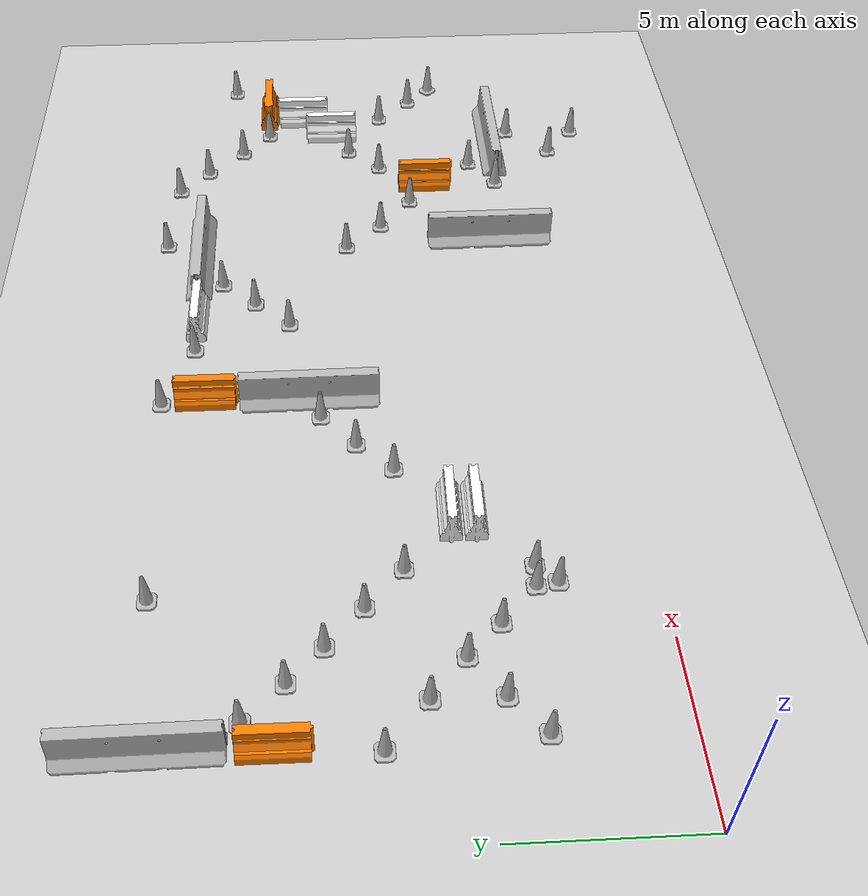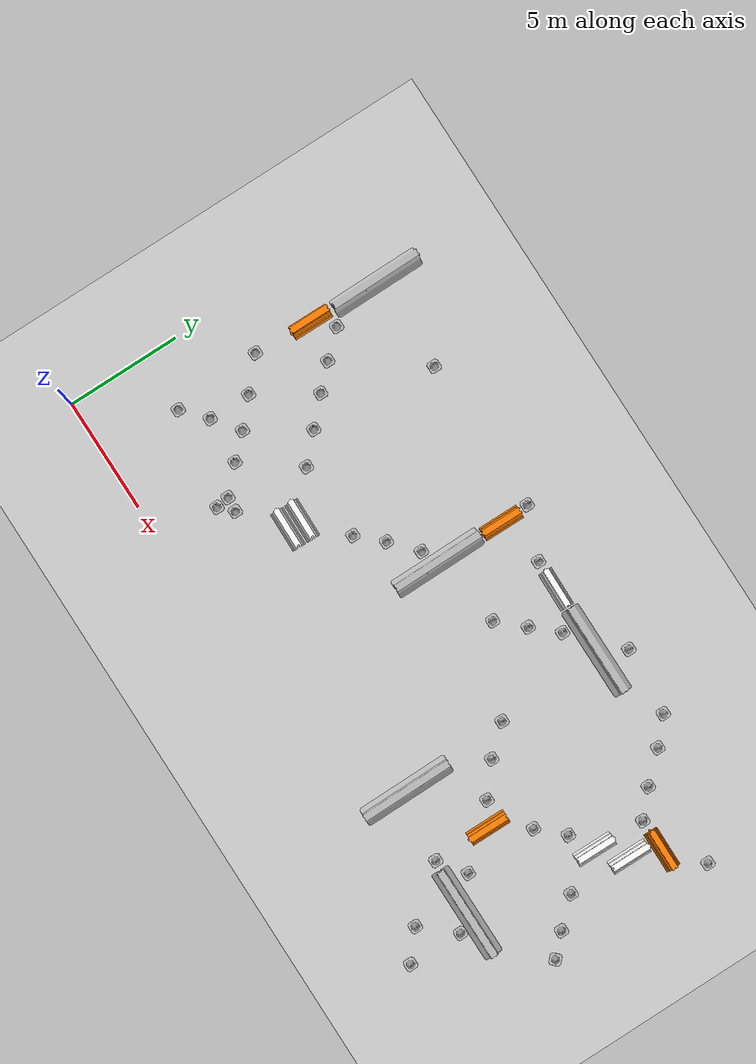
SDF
<sdf version="1.6">
 <world name="default">
  <model name="ground_plane">
   <static>1</static>
   <link name="link">
    <collision name="collision">
     <geometry><plane><normal>0 0 1</normal><size>100 100</size></plane></geometry>
     <surface>
      <contact><collide_bitmask>65535</collide_bitmask></contact>
      <friction><ode><mu>100</mu><mu2>50</mu2></ode></friction>
     </surface>
    </collision>
    <visual name="visual">
     <cast_shadows>0</cast_shadows>
     <geometry><plane><normal>0 0 1</normal><size>100 100</size></plane></geometry>
     <material>
      <script><uri>file://media/materials/scripts/gazebo.material</uri><name>Gazebo/Grey</name></script>
     </material>
    </visual>
   </link>
  </model>
  <model name="30x30env"><static>1</static><pose>32.1206 3.39752 0 0 -0 0</pose></model>
  <model name="Construction Cone_0_clone_0_clone_clone_clone_clone_clone_3_clone_0_clone_clone">
   <static>1</static>
   <link name="link">
    <collision name="collision">
     <geometry>
      <mesh><scale>10 10 10</scale><uri>model://construction_cone/meshes/construction_cone.dae</uri></mesh>
     </geometry>
    </collision>
    <visual name="visual">
     <geometry>
      <mesh><scale>10 10 10</scale><uri>model://construction_cone/meshes/construction_cone.dae</uri></mesh>
     </geometry>
    </visual>
    <inertial>
     <inertia><ixx>1</ixx><ixy>0</ixy><ixz>0</ixz><iyy>1</iyy><iyz>0</iyz><izz>1</izz></inertia>
     <mass>1</mass>
    </inertial>
   </link>
   <pose>20.6118 13.6161 -0 0 -0 0</pose>
  </model>
  <model name="Construction Cone_0_clone_0_clone_clone_clone_clone_clone_3_clone_0_clone_clone_0">
   <static>1</static>
   <link name="link">
    <collision name="collision">
     <geometry>
      <mesh><scale>10 10 10</scale><uri>model://construction_cone/meshes/construction_cone.dae</uri></mesh>
     </geometry>
    </collision>
    <visual name="visual">
     <geometry>
      <mesh><scale>10 10 10</scale><uri>model://construction_cone/meshes/construction_cone.dae</uri></mesh>
     </geometry>
    </visual>
    <inertial>
     <inertia><ixx>1</ixx><ixy>0</ixy><ixz>0</ixz><iyy>1</iyy><iyz>0</iyz><izz>1</izz></inertia>
     <mass>1</mass>
    </inertial>
   </link>
   <pose>23.5533 13.3733 -0 0 -0 0</pose>
  </model>
  <model name="Construction Cone_0_clone_0_clone_clone_clone_clone_clone_3_clone_0_clone_clone_1">
   <static>1</static>
   <link name="link">
    <collision name="collision">
     <geometry>
      <mesh><scale>10 10 10</scale><uri>model://construction_cone/meshes/construction_cone.dae</uri></mesh>
     </geometry>
    </collision>
    <visual name="visual">
     <geometry>
      <mesh><scale>10 10 10</scale><uri>model://construction_cone/meshes/construction_cone.dae</uri></mesh>
     </geometry>
    </visual>
    <inertial>
     <inertia><ixx>1</ixx><ixy>0</ixy><ixz>0</ixz><iyy>1</iyy><iyz>0</iyz><izz>1</izz></inertia>
     <mass>1</mass>
    </inertial>
   </link>
   <pose>24.5911 12.4307 -3e-06 -3e-06 -1e-06 -0</pose>
  </model>
  <model name="Construction Cone_0_clone_0_clone_clone_clone_clone_clone_3_clone_0_clone_clone_2">
   <static>1</static>
   <link name="link">
    <collision name="collision">
     <geometry>
      <mesh><scale>10 10 10</scale><uri>model://construction_cone/meshes/construction_cone.dae</uri></mesh>
     </geometry>
    </collision>
    <visual name="visual">
     <geometry>
      <mesh><scale>10 10 10</scale><uri>model://construction_cone/meshes/construction_cone.dae</uri></mesh>
     </geometry>
    </visual>
    <inertial>
     <inertia><ixx>1</ixx><ixy>0</ixy><ixz>0</ixz><iyy>1</iyy><iyz>0</iyz><izz>1</izz></inertia>
     <mass>1</mass>
    </inertial>
   </link>
   <pose>25.6981 11.2556 -3e-06 -3e-06 -1e-06 -0</pose>
  </model>
  <model name="drc_practice_organge_jersey_barrier_clone_clone_clone_0_clone">
   <static>1</static>
   <link name="link">
    <visual name="visual">
     <geometry>
      <mesh><uri>model://drc_practice_orange_jersey_barrier/meshes/jersey_barrier.dae</uri></mesh>
     </geometry>
    </visual>
    <collision name="collision">
     <geometry>
      <mesh><uri>model://drc_practice_orange_jersey_barrier/meshes/jersey_barrier.dae</uri></mesh>
     </geometry>
    </collision>
   </link>
   <pose>28.1226 10.3364 0 0 0 -1.57472</pose>
  </model>
  <model name="Construction Cone_0_clone_0_clone_clone_clone_clone_clone_3_clone_0_clone_clone_2_clone">
   <static>1</static>
   <link name="link">
    <collision name="collision">
     <geometry>
      <mesh><scale>10 10 10</scale><uri>model://construction_cone/meshes/construction_cone.dae</uri></mesh>
     </geometry>
    </collision>
    <visual name="visual">
     <geometry>
      <mesh><scale>10 10 10</scale><uri>model://construction_cone/meshes/construction_cone.dae</uri></mesh>
     </geometry>
    </visual>
    <inertial>
     <inertia><ixx>1</ixx><ixy>0</ixy><ixz>0</ixz><iyy>1</iyy><iyz>0</iyz><izz>1</izz></inertia>
     <mass>1</mass>
    </inertial>
   </link>
   <pose>26.7361 10.3238 -0 0 -0 0</pose>
  </model>
  <model name="Construction Cone_0_clone_0_clone_clone_clone_clone_clone_3_clone_0_clone_clone_2_clone_clone">
   <static>1</static>
   <link name="link">
    <collision name="collision">
     <geometry>
      <mesh><scale>10 10 10</scale><uri>model://construction_cone/meshes/construction_cone.dae</uri></mesh>
     </geometry>
    </collision>
    <visual name="visual">
     <geometry>
      <mesh><scale>10 10 10</scale><uri>model://construction_cone/meshes/construction_cone.dae</uri></mesh>
     </geometry>
    </visual>
    <inertial>
     <inertia><ixx>1</ixx><ixy>0</ixy><ixz>0</ixz><iyy>1</iyy><iyz>0</iyz><izz>1</izz></inertia>
     <mass>1</mass>
    </inertial>
   </link>
   <pose>29.595 11.6065 -0 0 -0 0.005179</pose>
  </model>
  <model name="drc_practice_white_jersey_barrier_clone_clone_clone_0_clone_0_clone_clone_0">
   <static>1</static>
   <link name="link">
    <visual name="visual">
     <geometry>
      <mesh><uri>model://drc_practice_white_jersey_barrier/meshes/jersey_barrier.dae</uri></mesh>
     </geometry>
    </visual>
    <collision name="collision">
     <geometry>
      <mesh><uri>model://drc_practice_white_jersey_barrier/meshes/jersey_barrier.dae</uri></mesh>
     </geometry>
    </collision>
   </link>
   <pose>27.6413 9.06502 0 0 -0 3.13979</pose>
  </model>
  <model name="drc_practice_white_jersey_barrier_clone_clone_clone_0_clone_0_clone_clone_1">
   <static>1</static>
   <link name="link">
    <visual name="visual">
     <geometry>
      <mesh><uri>model://drc_practice_white_jersey_barrier/meshes/jersey_barrier.dae</uri></mesh>
     </geometry>
    </visual>
    <collision name="collision">
     <geometry>
      <mesh><uri>model://drc_practice_white_jersey_barrier/meshes/jersey_barrier.dae</uri></mesh>
     </geometry>
    </collision>
   </link>
   <pose>26.6383 8.05655 0 0 -0 3.13979</pose>
  </model>
  <model name="Construction Cone_0_clone_0_clone_clone_clone_clone_clone_3_clone_0_clone_clone_2_clone_clone_0">
   <static>1</static>
   <link name="link">
    <collision name="collision">
     <geometry>
      <mesh><scale>10 10 10</scale><uri>model://construction_cone/meshes/construction_cone.dae</uri></mesh>
     </geometry>
    </collision>
    <visual name="visual">
     <geometry>
      <mesh><scale>10 10 10</scale><uri>model://construction_cone/meshes/construction_cone.dae</uri></mesh>
     </geometry>
    </visual>
    <inertial>
     <inertia><ixx>1</ixx><ixy>0</ixy><ixz>0</ixz><iyy>1</iyy><iyz>0</iyz><izz>1</izz></inertia>
     <mass>1</mass>
    </inertial>
   </link>
   <pose>25.5939 7.47742 -0 0 -0 0</pose>
  </model>
  <model name="Construction Cone_0_clone_0_clone_clone_clone_clone_clone_3_clone_0_clone_clone_2_clone_clone_1">
   <static>1</static>
   <link name="link">
    <collision name="collision">
     <geometry>
      <mesh><scale>10 10 10</scale><uri>model://construction_cone/meshes/construction_cone.dae</uri></mesh>
     </geometry>
    </collision>
    <visual name="visual">
     <geometry>
      <mesh><scale>10 10 10</scale><uri>model://construction_cone/meshes/construction_cone.dae</uri></mesh>
     </geometry>
    </visual>
    <inertial>
     <inertia><ixx>1</ixx><ixy>0</ixy><ixz>0</ixz><iyy>1</iyy><iyz>0</iyz><izz>1</izz></inertia>
     <mass>1</mass>
    </inertial>
   </link>
   <pose>27.6304 6.28997 0 -0 -0 -0</pose>
  </model>
  <model name="Construction Cone_0_clone_0_clone_clone_clone_clone_clone_3_clone_0_clone_clone_2_clone_clone_2">
   <static>1</static>
   <link name="link">
    <collision name="collision">
     <geometry>
      <mesh><scale>10 10 10</scale><uri>model://construction_cone/meshes/construction_cone.dae</uri></mesh>
     </geometry>
    </collision>
    <visual name="visual">
     <geometry>
      <mesh><scale>10 10 10</scale><uri>model://construction_cone/meshes/construction_cone.dae</uri></mesh>
     </geometry>
    </visual>
    <inertial>
     <inertia><ixx>1</ixx><ixy>0</ixy><ixz>0</ixz><iyy>1</iyy><iyz>0</iyz><izz>1</izz></inertia>
     <mass>1</mass>
    </inertial>
   </link>
   <pose>28.6791 5.15536 0 -0 -0 -0</pose>
  </model>
  <model name="Construction Cone_0_clone_0_clone_clone_clone_clone_clone_3_clone_0_clone_clone_2_clone_clone_3">
   <static>1</static>
   <link name="link">
    <collision name="collision">
     <geometry>
      <mesh><scale>10 10 10</scale><uri>model://construction_cone/meshes/construction_cone.dae</uri></mesh>
     </geometry>
    </collision>
    <visual name="visual">
     <geometry>
      <mesh><scale>10 10 10</scale><uri>model://construction_cone/meshes/construction_cone.dae</uri></mesh>
     </geometry>
    </visual>
    <inertial>
     <inertia><ixx>1</ixx><ixy>0</ixy><ixz>0</ixz><iyy>1</iyy><iyz>0</iyz><izz>1</izz></inertia>
     <mass>1</mass>
    </inertial>
   </link>
   <pose>29.5176 4.3266 -0 0 0 -0.794598</pose>
  </model>
  <model name="jersey_barrier_clone_clone_clone_0_clone_clone_clone_clone_clone_clone_clone">
   <static>1</static>
   <link name="link">
    <visual name="visual">
     <geometry><mesh><uri>model://jersey_barrier/meshes/jersey_barrier.dae</uri></mesh></geometry>
    </visual>
    <collision name="upright">
     <pose>0 0 0.5715 0 -0 0</pose>
     <geometry><box><size>4.06542 0.3063 1.143</size></box></geometry>
    </collision>
    <collision name="base">
     <pose>0 0 0.032258 0 -0 0</pose>
     <geometry><box><size>4.06542 0.8107 0.064516</size></box></geometry>
    </collision>
    <collision name="base2">
     <pose>0 0 0.1 0 -0 0</pose>
     <geometry><box><size>4.06542 0.65 0.1</size></box></geometry>
    </collision>
    <collision name="base3">
     <pose>0 0 0.2 0 -0 0</pose>
     <geometry><box><size>4.06542 0.5 0.1</size></box></geometry>
    </collision>
    <collision name="left-angle">
     <pose>0 -0.224 0.2401 0.9 -0 0</pose>
     <geometry><box><size>4.06542 0.5 0.064516</size></box></geometry>
    </collision>
    <collision name="right-angle">
     <pose>0 0.224 0.2401 -0.9 0 0</pose>
     <geometry><box><size>4.06542 0.5 0.064516</size></box></geometry>
    </collision>
   </link>
   <pose>25.9996 2.34435 0 0 -0 0</pose>
  </model>
  <model name="Construction Cone_0_clone_0_clone_clone_clone_clone_clone_3_clone_0_clone_clone_2_clone_clone_0_clone">
   <static>1</static>
   <link name="link">
    <collision name="collision">
     <geometry>
      <mesh><scale>10 10 10</scale><uri>model://construction_cone/meshes/construction_cone.dae</uri></mesh>
     </geometry>
    </collision>
    <visual name="visual">
     <geometry>
      <mesh><scale>10 10 10</scale><uri>model://construction_cone/meshes/construction_cone.dae</uri></mesh>
     </geometry>
    </visual>
    <inertial>
     <inertia><ixx>1</ixx><ixy>0</ixy><ixz>0</ixz><iyy>1</iyy><iyz>0</iyz><izz>1</izz></inertia>
     <mass>1</mass>
    </inertial>
   </link>
   <pose>23.5592 2.42175 -1e-05 -0 -0 -0</pose>
  </model>
  <model name="Construction Cone_0_clone_0_clone_clone_clone_clone_clone_3_clone_0_clone_clone_2_clone_clone_0_clone_0">
   <static>1</static>
   <link name="link">
    <collision name="collision">
     <geometry>
      <mesh><scale>10 10 10</scale><uri>model://construction_cone/meshes/construction_cone.dae</uri></mesh>
     </geometry>
    </collision>
    <visual name="visual">
     <geometry>
      <mesh><scale>10 10 10</scale><uri>model://construction_cone/meshes/construction_cone.dae</uri></mesh>
     </geometry>
    </visual>
    <inertial>
     <inertia><ixx>1</ixx><ixy>0</ixy><ixz>0</ixz><iyy>1</iyy><iyz>0</iyz><izz>1</izz></inertia>
     <mass>1</mass>
    </inertial>
   </link>
   <pose>24.7014 3.24681 -0 0 -0 0</pose>
  </model>
  <model name="drc_practice_organge_jersey_barrier_clone_clone_0_clone_0_clone">
   <static>1</static>
   <link name="link">
    <visual name="visual">
     <geometry>
      <mesh><uri>model://drc_practice_orange_jersey_barrier/meshes/jersey_barrier.dae</uri></mesh>
     </geometry>
    </visual>
    <collision name="collision">
     <geometry>
      <mesh><uri>model://drc_practice_orange_jersey_barrier/meshes/jersey_barrier.dae</uri></mesh>
     </geometry>
    </collision>
   </link>
   <pose>23.5764 4.91286 0 0 -0 0</pose>
  </model>
  <model name="Construction Cone_0_clone_0_clone_clone_clone_clone_clone_3_clone_0_clone_clone_2_clone_clone_1_clone">
   <static>1</static>
   <link name="link">
    <collision name="collision">
     <geometry>
      <mesh><scale>10 10 10</scale><uri>model://construction_cone/meshes/construction_cone.dae</uri></mesh>
     </geometry>
    </collision>
    <visual name="visual">
     <geometry>
      <mesh><scale>10 10 10</scale><uri>model://construction_cone/meshes/construction_cone.dae</uri></mesh>
     </geometry>
    </visual>
    <inertial>
     <inertia><ixx>1</ixx><ixy>0</ixy><ixz>0</ixz><iyy>1</iyy><iyz>0</iyz><izz>1</izz></inertia>
     <mass>1</mass>
    </inertial>
   </link>
   <pose>24.614 6.43618 -0 0 -0 0</pose>
  </model>
  <model name="Construction Cone_0_clone_0_clone_clone_clone_clone_clone_3_clone_0_clone_clone_2_clone_clone_1_clone_0">
   <static>1</static>
   <link name="link">
    <collision name="collision">
     <geometry>
      <mesh><scale>10 10 10</scale><uri>model://construction_cone/meshes/construction_cone.dae</uri></mesh>
     </geometry>
    </collision>
    <visual name="visual">
     <geometry>
      <mesh><scale>10 10 10</scale><uri>model://construction_cone/meshes/construction_cone.dae</uri></mesh>
     </geometry>
    </visual>
    <inertial>
     <inertia><ixx>1</ixx><ixy>0</ixy><ixz>0</ixz><iyy>1</iyy><iyz>0</iyz><izz>1</izz></inertia>
     <mass>1</mass>
    </inertial>
   </link>
   <pose>22.6259 5.47823 0 -0 -0 -0</pose>
  </model>
  <model name="Construction Cone_0_clone_0_clone_clone_clone_clone_clone_3_clone_0_clone_clone_2_clone_clone_1_clone_1">
   <static>1</static>
   <link name="link">
    <collision name="collision">
     <geometry>
      <mesh><scale>10 10 10</scale><uri>model://construction_cone/meshes/construction_cone.dae</uri></mesh>
     </geometry>
    </collision>
    <visual name="visual">
     <geometry>
      <mesh><scale>10 10 10</scale><uri>model://construction_cone/meshes/construction_cone.dae</uri></mesh>
     </geometry>
    </visual>
    <inertial>
     <inertia><ixx>1</ixx><ixy>0</ixy><ixz>0</ixz><iyy>1</iyy><iyz>0</iyz><izz>1</izz></inertia>
     <mass>1</mass>
    </inertial>
   </link>
   <pose>21.3354 6.54189 -0 0 -0 0</pose>
  </model>
  <model name="Construction Cone_0_clone_0_clone_clone_clone_clone_clone_3_clone_0_clone_clone_2_clone_clone_1_clone_2">
   <static>1</static>
   <link name="link">
    <collision name="collision">
     <geometry>
      <mesh><scale>10 10 10</scale><uri>model://construction_cone/meshes/construction_cone.dae</uri></mesh>
     </geometry>
    </collision>
    <visual name="visual">
     <geometry>
      <mesh><scale>10 10 10</scale><uri>model://construction_cone/meshes/construction_cone.dae</uri></mesh>
     </geometry>
    </visual>
    <inertial>
     <inertia><ixx>1</ixx><ixy>0</ixy><ixz>0</ixz><iyy>1</iyy><iyz>0</iyz><izz>1</izz></inertia>
     <mass>1</mass>
    </inertial>
   </link>
   <pose>20.2782 7.7183 -6e-06 -4e-06 1e-06 0</pose>
  </model>
  <model name="jersey_barrier_clone_clone_clone_0_clone_clone_clone_clone_clone_0">
   <static>1</static>
   <link name="link">
    <visual name="visual">
     <geometry><mesh><uri>model://jersey_barrier/meshes/jersey_barrier.dae</uri></mesh></geometry>
    </visual>
    <collision name="upright">
     <pose>0 0 0.5715 0 -0 0</pose>
     <geometry><box><size>4.06542 0.3063 1.143</size></box></geometry>
    </collision>
    <collision name="base">
     <pose>0 0 0.032258 0 -0 0</pose>
     <geometry><box><size>4.06542 0.8107 0.064516</size></box></geometry>
    </collision>
    <collision name="base2">
     <pose>0 0 0.1 0 -0 0</pose>
     <geometry><box><size>4.06542 0.65 0.1</size></box></geometry>
    </collision>
    <collision name="base3">
     <pose>0 0 0.2 0 -0 0</pose>
     <geometry><box><size>4.06542 0.5 0.1</size></box></geometry>
    </collision>
    <collision name="left-angle">
     <pose>0 -0.224 0.2401 0.9 -0 0</pose>
     <geometry><box><size>4.06542 0.5 0.064516</size></box></geometry>
    </collision>
    <collision name="right-angle">
     <pose>0 0.224 0.2401 -0.9 0 0</pose>
     <geometry><box><size>4.06542 0.5 0.064516</size></box></geometry>
    </collision>
   </link>
   <pose>19.9421 12.4873 0 0 -0 0</pose>
  </model>
  <model name="Construction Cone_0_clone_0_clone_clone_clone_clone_clone_3_clone_0_clone_clone_2_clone_clone_0_clone_0_clone">
   <static>1</static>
   <link name="link">
    <collision name="collision">
     <geometry>
      <mesh><scale>10 10 10</scale><uri>model://construction_cone/meshes/construction_cone.dae</uri></mesh>
     </geometry>
    </collision>
    <visual name="visual">
     <geometry>
      <mesh><scale>10 10 10</scale><uri>model://construction_cone/meshes/construction_cone.dae</uri></mesh>
     </geometry>
    </visual>
    <inertial>
     <inertia><ixx>1</ixx><ixy>0</ixy><ixz>0</ixz><iyy>1</iyy><iyz>0</iyz><izz>1</izz></inertia>
     <mass>1</mass>
    </inertial>
   </link>
   <pose>26.5587 1.68069 -0 0 -0 0</pose>
  </model>
  <model name="Construction Cone_0_clone_0_clone_clone_clone_clone_clone_3_clone_0_clone_clone_2_clone_clone_0_clone_0_clone_0">
   <static>1</static>
   <link name="link">
    <collision name="collision">
     <geometry>
      <mesh><scale>10 10 10</scale><uri>model://construction_cone/meshes/construction_cone.dae</uri></mesh>
     </geometry>
    </collision>
    <visual name="visual">
     <geometry>
      <mesh><scale>10 10 10</scale><uri>model://construction_cone/meshes/construction_cone.dae</uri></mesh>
     </geometry>
    </visual>
    <inertial>
     <inertia><ixx>1</ixx><ixy>0</ixy><ixz>0</ixz><iyy>1</iyy><iyz>0</iyz><izz>1</izz></inertia>
     <mass>1</mass>
    </inertial>
   </link>
   <pose>25.343 0.28916 -0 0 -1e-06 0</pose>
  </model>
  <model name="Construction Cone_0_clone_0_clone_clone_clone_clone_clone_3_clone_0_clone_clone_2_clone_clone_0_clone_0_clone_0_clone">
   <static>1</static>
   <link name="link">
    <collision name="collision">
     <geometry>
      <mesh><scale>10 10 10</scale><uri>model://construction_cone/meshes/construction_cone.dae</uri></mesh>
     </geometry>
    </collision>
    <visual name="visual">
     <geometry>
      <mesh><scale>10 10 10</scale><uri>model://construction_cone/meshes/construction_cone.dae</uri></mesh>
     </geometry>
    </visual>
    <inertial>
     <inertia><ixx>1</ixx><ixy>0</ixy><ixz>0</ixz><iyy>1</iyy><iyz>0</iyz><izz>1</izz></inertia>
     <mass>1</mass>
    </inertial>
   </link>
   <pose>26.519 -0.691811 -0 0 -0 0</pose>
  </model>
  <model name="jersey_barrier_clone_clone_clone_clone_clone_clone_clone">
   <static>1</static>
   <link name="link">
    <visual name="visual">
     <geometry><mesh><uri>model://jersey_barrier/meshes/jersey_barrier.dae</uri></mesh></geometry>
    </visual>
    <collision name="upright">
     <pose>0 0 0.5715 0 -0 0</pose>
     <geometry><box><size>4.06542 0.3063 1.143</size></box></geometry>
    </collision>
    <collision name="base">
     <pose>0 0 0.032258 0 -0 0</pose>
     <geometry><box><size>4.06542 0.8107 0.064516</size></box></geometry>
    </collision>
    <collision name="base2">
     <pose>0 0 0.1 0 -0 0</pose>
     <geometry><box><size>4.06542 0.65 0.1</size></box></geometry>
    </collision>
    <collision name="base3">
     <pose>0 0 0.2 0 -0 0</pose>
     <geometry><box><size>4.06542 0.5 0.1</size></box></geometry>
    </collision>
    <collision name="left-angle">
     <pose>0 -0.224 0.2401 0.9 -0 0</pose>
     <geometry><box><size>4.06542 0.5 0.064516</size></box></geometry>
    </collision>
    <collision name="right-angle">
     <pose>0 0.224 0.2401 -0.9 0 0</pose>
     <geometry><box><size>4.06542 0.5 0.064516</size></box></geometry>
    </collision>
   </link>
   <pose>20.5377 2.96326 0 0 0 -1.56391</pose>
  </model>
  <model name="jersey_barrier_clone_clone_clone_clone_clone_clone_clone_clone">
   <static>1</static>
   <link name="link">
    <visual name="visual">
     <geometry><mesh><uri>model://jersey_barrier/meshes/jersey_barrier.dae</uri></mesh></geometry>
    </visual>
    <collision name="upright">
     <pose>0 0 0.5715 0 -0 0</pose>
     <geometry><box><size>4.06542 0.3063 1.143</size></box></geometry>
    </collision>
    <collision name="base">
     <pose>0 0 0.032258 0 -0 0</pose>
     <geometry><box><size>4.06542 0.8107 0.064516</size></box></geometry>
    </collision>
    <collision name="base2">
     <pose>0 0 0.1 0 -0 0</pose>
     <geometry><box><size>4.06542 0.65 0.1</size></box></geometry>
    </collision>
    <collision name="base3">
     <pose>0 0 0.2 0 -0 0</pose>
     <geometry><box><size>4.06542 0.5 0.1</size></box></geometry>
    </collision>
    <collision name="left-angle">
     <pose>0 -0.224 0.2401 0.9 -0 0</pose>
     <geometry><box><size>4.06542 0.5 0.064516</size></box></geometry>
    </collision>
    <collision name="right-angle">
     <pose>0 0.224 0.2401 -0.9 0 0</pose>
     <geometry><box><size>4.06542 0.5 0.064516</size></box></geometry>
    </collision>
   </link>
   <pose>13.4771 9.00751 0 0 0 -1.56391</pose>
  </model>
  <model name="drc_practice_organge_jersey_barrier_clone_clone_0_clone_0_clone_clone_1">
   <static>1</static>
   <link name="link">
    <visual name="visual">
     <geometry>
      <mesh><uri>model://drc_practice_orange_jersey_barrier/meshes/jersey_barrier.dae</uri></mesh>
     </geometry>
    </visual>
    <collision name="collision">
     <geometry>
      <mesh><uri>model://drc_practice_orange_jersey_barrier/meshes/jersey_barrier.dae</uri></mesh>
     </geometry>
    </collision>
   </link>
   <pose>13.5201 12.0394 0 0 -0 0</pose>
  </model>
  <model name="Construction Cone_0_clone_0_clone_clone_clone_clone_clone_3_clone_clone_clone_0_clone">
   <static>1</static>
   <link name="link">
    <collision name="collision">
     <geometry>
      <mesh><scale>10 10 10</scale><uri>model://construction_cone/meshes/construction_cone.dae</uri></mesh>
     </geometry>
    </collision>
    <visual name="visual">
     <geometry>
      <mesh><scale>10 10 10</scale><uri>model://construction_cone/meshes/construction_cone.dae</uri></mesh>
     </geometry>
    </visual>
    <inertial>
     <inertia><ixx>1</ixx><ixy>0</ixy><ixz>0</ixz><iyy>1</iyy><iyz>0</iyz><izz>1</izz></inertia>
     <mass>1</mass>
    </inertial>
   </link>
   <pose>13.461 13.3343 0 -0 -0 -0</pose>
  </model>
  <model name="drc_practice_white_jersey_barrier_clone_clone_clone_clone_clone_clone_clone_clone">
   <static>1</static>
   <link name="link">
    <visual name="visual">
     <geometry>
      <mesh><uri>model://drc_practice_white_jersey_barrier/meshes/jersey_barrier.dae</uri></mesh>
     </geometry>
    </visual>
    <collision name="collision">
     <geometry>
      <mesh><uri>model://drc_practice_white_jersey_barrier/meshes/jersey_barrier.dae</uri></mesh>
     </geometry>
    </collision>
   </link>
   <pose>16.9746 12.4537 0 0 0 -1.58176</pose>
  </model>
  <model name="Construction Cone_0_clone_0_clone_clone_clone_clone_clone_3_clone_0_clone_clone_clone_clone">
   <static>1</static>
   <link name="link">
    <collision name="collision">
     <geometry>
      <mesh><scale>10 10 10</scale><uri>model://construction_cone/meshes/construction_cone.dae</uri></mesh>
     </geometry>
    </collision>
    <visual name="visual">
     <geometry>
      <mesh><scale>10 10 10</scale><uri>model://construction_cone/meshes/construction_cone.dae</uri></mesh>
     </geometry>
    </visual>
    <inertial>
     <inertia><ixx>1</ixx><ixy>0</ixy><ixz>0</ixz><iyy>1</iyy><iyz>0</iyz><izz>1</izz></inertia>
     <mass>1</mass>
    </inertial>
   </link>
   <pose>15.643 12.4734 -0 0 -1e-06 0</pose>
  </model>
  <model name="Construction Cone_0_clone_0_clone_clone_clone_clone_clone_3_clone_0_clone_clone_clone">
   <static>1</static>
   <link name="link">
    <collision name="collision">
     <geometry>
      <mesh><scale>10 10 10</scale><uri>model://construction_cone/meshes/construction_cone.dae</uri></mesh>
     </geometry>
    </collision>
    <visual name="visual">
     <geometry>
      <mesh><scale>10 10 10</scale><uri>model://construction_cone/meshes/construction_cone.dae</uri></mesh>
     </geometry>
    </visual>
    <inertial>
     <inertia><ixx>1</ixx><ixy>0</ixy><ixz>0</ixz><iyy>1</iyy><iyz>0</iyz><izz>1</izz></inertia>
     <mass>1</mass>
    </inertial>
   </link>
   <pose>18.5945 11.7229 -0 -0 -0 -0</pose>
  </model>
  <model name="Construction Cone_0_clone_0_clone_clone_clone_clone_clone_3_clone_0_clone_clone_clone_0">
   <static>1</static>
   <link name="link">
    <collision name="collision">
     <geometry>
      <mesh><scale>10 10 10</scale><uri>model://construction_cone/meshes/construction_cone.dae</uri></mesh>
     </geometry>
    </collision>
    <visual name="visual">
     <geometry>
      <mesh><scale>10 10 10</scale><uri>model://construction_cone/meshes/construction_cone.dae</uri></mesh>
     </geometry>
    </visual>
    <inertial>
     <inertia><ixx>1</ixx><ixy>0</ixy><ixz>0</ixz><iyy>1</iyy><iyz>0</iyz><izz>1</izz></inertia>
     <mass>1</mass>
    </inertial>
   </link>
   <pose>17.6546 10.6782 -0 0 -1e-06 0</pose>
  </model>
  <model name="Construction Cone_0_clone_0_clone_clone_clone_clone_clone_3_clone_0_clone_clone_clone_1">
   <static>1</static>
   <link name="link">
    <collision name="collision">
     <geometry>
      <mesh><scale>10 10 10</scale><uri>model://construction_cone/meshes/construction_cone.dae</uri></mesh>
     </geometry>
    </collision>
    <visual name="visual">
     <geometry>
      <mesh><scale>10 10 10</scale><uri>model://construction_cone/meshes/construction_cone.dae</uri></mesh>
     </geometry>
    </visual>
    <inertial>
     <inertia><ixx>1</ixx><ixy>0</ixy><ixz>0</ixz><iyy>1</iyy><iyz>0</iyz><izz>1</izz></inertia>
     <mass>1</mass>
    </inertial>
   </link>
   <pose>16.661 9.60547 -0 0 -1e-06 0</pose>
  </model>
  <model name="Construction Cone_0_clone_0_clone_clone_clone_clone_clone_3_clone_0_clone_clone_clone_1_clone">
   <static>1</static>
   <link name="link">
    <collision name="collision">
     <geometry>
      <mesh><scale>10 10 10</scale><uri>model://construction_cone/meshes/construction_cone.dae</uri></mesh>
     </geometry>
    </collision>
    <visual name="visual">
     <geometry>
      <mesh><scale>10 10 10</scale><uri>model://construction_cone/meshes/construction_cone.dae</uri></mesh>
     </geometry>
    </visual>
    <inertial>
     <inertia><ixx>1</ixx><ixy>0</ixy><ixz>0</ixz><iyy>1</iyy><iyz>0</iyz><izz>1</izz></inertia>
     <mass>1</mass>
    </inertial>
   </link>
   <pose>12.729 8.701 -5e-06 -4e-06 1e-06 0</pose>
  </model>
  <model name="Construction Cone_0_clone_0_clone_clone_clone_clone_clone_3_clone_0_clone_clone_clone_1_clone_0">
   <static>1</static>
   <link name="link">
    <collision name="collision">
     <geometry>
      <mesh><scale>10 10 10</scale><uri>model://construction_cone/meshes/construction_cone.dae</uri></mesh>
     </geometry>
    </collision>
    <visual name="visual">
     <geometry>
      <mesh><scale>10 10 10</scale><uri>model://construction_cone/meshes/construction_cone.dae</uri></mesh>
     </geometry>
    </visual>
    <inertial>
     <inertia><ixx>1</ixx><ixy>0</ixy><ixz>0</ixz><iyy>1</iyy><iyz>0</iyz><izz>1</izz></inertia>
     <mass>1</mass>
    </inertial>
   </link>
   <pose>11.6361 7.72227 -4e-06 4e-06 -1e-06 0</pose>
  </model>
  <model name="Construction Cone_0_clone_0_clone_clone_clone_clone_clone_3_clone_0_clone_clone_clone_1_clone_1">
   <static>1</static>
   <link name="link">
    <collision name="collision">
     <geometry>
      <mesh><scale>10 10 10</scale><uri>model://construction_cone/meshes/construction_cone.dae</uri></mesh>
     </geometry>
    </collision>
    <visual name="visual">
     <geometry>
      <mesh><scale>10 10 10</scale><uri>model://construction_cone/meshes/construction_cone.dae</uri></mesh>
     </geometry>
    </visual>
    <inertial>
     <inertia><ixx>1</ixx><ixy>0</ixy><ixz>0</ixz><iyy>1</iyy><iyz>0</iyz><izz>1</izz></inertia>
     <mass>1</mass>
    </inertial>
   </link>
   <pose>10.6841 6.71321 -0 0 -0 0</pose>
  </model>
  <model name="drc_practice_white_jersey_barrier_clone_clone_clone_clone_clone_clone_clone_clone_clone">
   <static>1</static>
   <link name="link">
    <visual name="visual">
     <geometry>
      <mesh><uri>model://drc_practice_white_jersey_barrier/meshes/jersey_barrier.dae</uri></mesh>
     </geometry>
    </visual>
    <collision name="collision">
     <geometry>
      <mesh><uri>model://drc_practice_white_jersey_barrier/meshes/jersey_barrier.dae</uri></mesh>
     </geometry>
    </collision>
   </link>
   <pose>9.07237 5.31606 0 0 0 -1.58176</pose>
  </model>
  <model name="drc_practice_white_jersey_barrier_clone_clone_clone_clone_clone_clone_clone_clone_clone_0">
   <static>1</static>
   <link name="link">
    <visual name="visual">
     <geometry>
      <mesh><uri>model://drc_practice_white_jersey_barrier/meshes/jersey_barrier.dae</uri></mesh>
     </geometry>
    </visual>
    <collision name="collision">
     <geometry>
      <mesh><uri>model://drc_practice_white_jersey_barrier/meshes/jersey_barrier.dae</uri></mesh>
     </geometry>
    </collision>
   </link>
   <pose>9.06283 4.63451 0 0 0 -1.58176</pose>
  </model>
  <model name="Construction Cone_0_clone_0_clone_clone_clone_clone_clone_3_clone_0_clone_clone_clone_1_clone_1_clone_2">
   <static>1</static>
   <link name="link">
    <collision name="collision">
     <geometry>
      <mesh><scale>10 10 10</scale><uri>model://construction_cone/meshes/construction_cone.dae</uri></mesh>
     </geometry>
    </collision>
    <visual name="visual">
     <geometry>
      <mesh><scale>10 10 10</scale><uri>model://construction_cone/meshes/construction_cone.dae</uri></mesh>
     </geometry>
    </visual>
    <inertial>
     <inertia><ixx>1</ixx><ixy>0</ixy><ixz>0</ixz><iyy>1</iyy><iyz>0</iyz><izz>1</izz></inertia>
     <mass>1</mass>
    </inertial>
   </link>
   <pose>7.31427 6.63968 -0 0 -0 0</pose>
  </model>
  <model name="Construction Cone_0_clone_0_clone_clone_clone_clone_clone_3_clone_0_clone_clone_clone_1_clone_1_clone_3">
   <static>1</static>
   <link name="link">
    <collision name="collision">
     <geometry>
      <mesh><scale>10 10 10</scale><uri>model://construction_cone/meshes/construction_cone.dae</uri></mesh>
     </geometry>
    </collision>
    <visual name="visual">
     <geometry>
      <mesh><scale>10 10 10</scale><uri>model://construction_cone/meshes/construction_cone.dae</uri></mesh>
     </geometry>
    </visual>
    <inertial>
     <inertia><ixx>1</ixx><ixy>0</ixy><ixz>0</ixz><iyy>1</iyy><iyz>0</iyz><izz>1</izz></inertia>
     <mass>1</mass>
    </inertial>
   </link>
   <pose>6.19283 7.70718 -0 0 -0 0</pose>
  </model>
  <model name="Construction Cone_0_clone_0_clone_clone_clone_clone_clone_3_clone_0_clone_clone_clone_1_clone_1_clone_4">
   <static>1</static>
   <link name="link">
    <collision name="collision">
     <geometry>
      <mesh><scale>10 10 10</scale><uri>model://construction_cone/meshes/construction_cone.dae</uri></mesh>
     </geometry>
    </collision>
    <visual name="visual">
     <geometry>
      <mesh><scale>10 10 10</scale><uri>model://construction_cone/meshes/construction_cone.dae</uri></mesh>
     </geometry>
    </visual>
    <inertial>
     <inertia><ixx>1</ixx><ixy>0</ixy><ixz>0</ixz><iyy>1</iyy><iyz>0</iyz><izz>1</izz></inertia>
     <mass>1</mass>
    </inertial>
   </link>
   <pose>5.09971 8.74603 0 -0 -0 -0</pose>
  </model>
  <model name="Construction Cone_0_clone_0_clone_clone_clone_clone_clone_3_clone_0_clone_clone_clone_1_clone_1_clone_5">
   <static>1</static>
   <link name="link">
    <collision name="collision">
     <geometry>
      <mesh><scale>10 10 10</scale><uri>model://construction_cone/meshes/construction_cone.dae</uri></mesh>
     </geometry>
    </collision>
    <visual name="visual">
     <geometry>
      <mesh><scale>10 10 10</scale><uri>model://construction_cone/meshes/construction_cone.dae</uri></mesh>
     </geometry>
    </visual>
    <inertial>
     <inertia><ixx>1</ixx><ixy>0</ixy><ixz>0</ixz><iyy>1</iyy><iyz>0</iyz><izz>1</izz></inertia>
     <mass>1</mass>
    </inertial>
   </link>
   <pose>4.14767 9.69768 -0 0 -0 0</pose>
  </model>
  <model name="Construction Cone_0_clone_0_clone_clone_clone_clone_clone_3_clone_0_clone_clone_clone_1_clone_1_clone_6">
   <static>1</static>
   <link name="link">
    <collision name="collision">
     <geometry>
      <mesh><scale>10 10 10</scale><uri>model://construction_cone/meshes/construction_cone.dae</uri></mesh>
     </geometry>
    </collision>
    <visual name="visual">
     <geometry>
      <mesh><scale>10 10 10</scale><uri>model://construction_cone/meshes/construction_cone.dae</uri></mesh>
     </geometry>
    </visual>
    <inertial>
     <inertia><ixx>1</ixx><ixy>0</ixy><ixz>0</ixz><iyy>1</iyy><iyz>0</iyz><izz>1</izz></inertia>
     <mass>1</mass>
    </inertial>
   </link>
   <pose>3.16803 10.7632 -0 0 -1e-06 0</pose>
  </model>
  <model name="drc_practice_organge_jersey_barrier_clone_clone_0_clone_0_clone_0">
   <static>1</static>
   <link name="link">
    <visual name="visual">
     <geometry>
      <mesh><uri>model://drc_practice_orange_jersey_barrier/meshes/jersey_barrier.dae</uri></mesh>
     </geometry>
    </visual>
    <collision name="collision">
     <geometry>
      <mesh><uri>model://drc_practice_orange_jersey_barrier/meshes/jersey_barrier.dae</uri></mesh>
     </geometry>
    </collision>
   </link>
   <pose>2.45035 9.96163 0 0 -0 0</pose>
  </model>
  <model name="Construction Cone_0_clone_0_clone_clone_clone_clone_clone_3_clone_0_clone_clone_clone_1_clone_1_clone_5_clone_0">
   <static>1</static>
   <link name="link">
    <collision name="collision">
     <geometry>
      <mesh><scale>10 10 10</scale><uri>model://construction_cone/meshes/construction_cone.dae</uri></mesh>
     </geometry>
    </collision>
    <visual name="visual">
     <geometry>
      <mesh><scale>10 10 10</scale><uri>model://construction_cone/meshes/construction_cone.dae</uri></mesh>
     </geometry>
    </visual>
    <inertial>
     <inertia><ixx>1</ixx><ixy>0</ixy><ixz>0</ixz><iyy>1</iyy><iyz>0</iyz><izz>1</izz></inertia>
     <mass>1</mass>
    </inertial>
   </link>
   <pose>2.28681 7.39991 0 -0 -0 -0</pose>
  </model>
  <model name="Construction Cone_0_clone_0_clone_clone_clone_clone_clone_3_clone_0_clone_clone_clone_1_clone_1_clone_5_clone_1">
   <static>1</static>
   <link name="link">
    <collision name="collision">
     <geometry>
      <mesh><scale>10 10 10</scale><uri>model://construction_cone/meshes/construction_cone.dae</uri></mesh>
     </geometry>
    </collision>
    <visual name="visual">
     <geometry>
      <mesh><scale>10 10 10</scale><uri>model://construction_cone/meshes/construction_cone.dae</uri></mesh>
     </geometry>
    </visual>
    <inertial>
     <inertia><ixx>1</ixx><ixy>0</ixy><ixz>0</ixz><iyy>1</iyy><iyz>0</iyz><izz>1</izz></inertia>
     <mass>1</mass>
    </inertial>
   </link>
   <pose>3.55773 6.25786 -1e-05 -0 -0 -0</pose>
  </model>
  <model name="Construction Cone_0_clone_0_clone_clone_clone_clone_clone_3_clone_0_clone_clone_clone_1_clone_1_clone_5_clone_2">
   <static>1</static>
   <link name="link">
    <collision name="collision">
     <geometry>
      <mesh><scale>10 10 10</scale><uri>model://construction_cone/meshes/construction_cone.dae</uri></mesh>
     </geometry>
    </collision>
    <visual name="visual">
     <geometry>
      <mesh><scale>10 10 10</scale><uri>model://construction_cone/meshes/construction_cone.dae</uri></mesh>
     </geometry>
    </visual>
    <inertial>
     <inertia><ixx>1</ixx><ixy>0</ixy><ixz>0</ixz><iyy>1</iyy><iyz>0</iyz><izz>1</izz></inertia>
     <mass>1</mass>
    </inertial>
   </link>
   <pose>4.6611 5.25615 -0 0 -0 0</pose>
  </model>
  <model name="Construction Cone_0_clone_0_clone_clone_clone_clone_clone_3_clone_0_clone_clone_clone_1_clone_1_clone_5_clone_3">
   <static>1</static>
   <link name="link">
    <collision name="collision">
     <geometry>
      <mesh><scale>10 10 10</scale><uri>model://construction_cone/meshes/construction_cone.dae</uri></mesh>
     </geometry>
    </collision>
    <visual name="visual">
     <geometry>
      <mesh><scale>10 10 10</scale><uri>model://construction_cone/meshes/construction_cone.dae</uri></mesh>
     </geometry>
    </visual>
    <inertial>
     <inertia><ixx>1</ixx><ixy>0</ixy><ixz>0</ixz><iyy>1</iyy><iyz>0</iyz><izz>1</izz></inertia>
     <mass>1</mass>
    </inertial>
   </link>
   <pose>5.58474 4.30511 0 -0 -0 -0</pose>
  </model>
  <model name="Construction Cone_0_clone_0_clone_clone_clone_clone_clone_3_clone_0_clone_clone_clone_1_clone_1_clone_clone">
   <static>1</static>
   <link name="link">
    <collision name="collision">
     <geometry>
      <mesh><scale>10 10 10</scale><uri>model://construction_cone/meshes/construction_cone.dae</uri></mesh>
     </geometry>
    </collision>
    <visual name="visual">
     <geometry>
      <mesh><scale>10 10 10</scale><uri>model://construction_cone/meshes/construction_cone.dae</uri></mesh>
     </geometry>
    </visual>
    <inertial>
     <inertia><ixx>1</ixx><ixy>0</ixy><ixz>0</ixz><iyy>1</iyy><iyz>0</iyz><izz>1</izz></inertia>
     <mass>1</mass>
    </inertial>
   </link>
   <pose>6.64545 3.28579 -1e-05 0 0 -0.001073</pose>
  </model>
  <model name="Construction Cone_0_clone_0_clone_clone_clone_clone_clone_3_clone_0_clone_clone_clone_1_clone_1_clone_clone_clone">
   <static>1</static>
   <link name="link">
    <collision name="collision">
     <geometry>
      <mesh><scale>10 10 10</scale><uri>model://construction_cone/meshes/construction_cone.dae</uri></mesh>
     </geometry>
    </collision>
    <visual name="visual">
     <geometry>
      <mesh><scale>10 10 10</scale><uri>model://construction_cone/meshes/construction_cone.dae</uri></mesh>
     </geometry>
    </visual>
    <inertial>
     <inertia><ixx>1</ixx><ixy>0</ixy><ixz>0</ixz><iyy>1</iyy><iyz>0</iyz><izz>1</izz></inertia>
     <mass>1</mass>
    </inertial>
   </link>
   <pose>7.27606 3.23487 0 -0 -0 -0.001073</pose>
  </model>
  <model name="Construction Cone_0_clone_0_clone_clone_clone_clone_clone_3_clone_0_clone_clone_clone_1_clone_1_clone_clone_clone_0">
   <static>1</static>
   <link name="link">
    <collision name="collision">
     <geometry>
      <mesh><scale>10 10 10</scale><uri>model://construction_cone/meshes/construction_cone.dae</uri></mesh>
     </geometry>
    </collision>
    <visual name="visual">
     <geometry>
      <mesh><scale>10 10 10</scale><uri>model://construction_cone/meshes/construction_cone.dae</uri></mesh>
     </geometry>
    </visual>
    <inertial>
     <inertia><ixx>1</ixx><ixy>0</ixy><ixz>0</ixz><iyy>1</iyy><iyz>0</iyz><izz>1</izz></inertia>
     <mass>1</mass>
    </inertial>
   </link>
   <pose>6.73953 2.70185 -1e-05 0 0 -0.001073</pose>
  </model>
  <model name="Construction Cone_0_clone_0_clone_clone_clone_clone_clone_3_clone_0_clone_clone_clone_1_clone_1_clone_clone_clone_0_clone_1">
   <static>1</static>
   <link name="link">
    <collision name="collision">
     <geometry>
      <mesh><scale>10 10 10</scale><uri>model://construction_cone/meshes/construction_cone.dae</uri></mesh>
     </geometry>
    </collision>
    <visual name="visual">
     <geometry>
      <mesh><scale>10 10 10</scale><uri>model://construction_cone/meshes/construction_cone.dae</uri></mesh>
     </geometry>
    </visual>
    <inertial>
     <inertia><ixx>1</ixx><ixy>0</ixy><ixz>0</ixz><iyy>1</iyy><iyz>0</iyz><izz>1</izz></inertia>
     <mass>1</mass>
    </inertial>
   </link>
   <pose>2.54183 3.51702 -0 0 0 -0.001073</pose>
  </model>
  <model name="Construction Cone_0_clone_0_clone_clone_clone_clone_clone_3_clone_0_clone_clone_clone_1_clone_1_clone_clone_clone_0_clone_2">
   <static>1</static>
   <link name="link">
    <collision name="collision">
     <geometry>
      <mesh><scale>10 10 10</scale><uri>model://construction_cone/meshes/construction_cone.dae</uri></mesh>
     </geometry>
    </collision>
    <visual name="visual">
     <geometry>
      <mesh><scale>10 10 10</scale><uri>model://construction_cone/meshes/construction_cone.dae</uri></mesh>
     </geometry>
    </visual>
    <inertial>
     <inertia><ixx>1</ixx><ixy>0</ixy><ixz>0</ixz><iyy>1</iyy><iyz>0</iyz><izz>1</izz></inertia>
     <mass>1</mass>
    </inertial>
   </link>
   <pose>3.54953 4.40943 -0 0 -1e-06 -0.001073</pose>
  </model>
  <model name="Construction Cone_0_clone_0_clone_clone_clone_clone_clone_3_clone_0_clone_clone_clone_1_clone_1_clone_6_clone_5">
   <static>1</static>
   <link name="link">
    <collision name="collision">
     <geometry>
      <mesh><scale>10 10 10</scale><uri>model://construction_cone/meshes/construction_cone.dae</uri></mesh>
     </geometry>
    </collision>
    <visual name="visual">
     <geometry>
      <mesh><scale>10 10 10</scale><uri>model://construction_cone/meshes/construction_cone.dae</uri></mesh>
     </geometry>
    </visual>
    <inertial>
     <inertia><ixx>1</ixx><ixy>0</ixy><ixz>0</ixz><iyy>1</iyy><iyz>0</iyz><izz>1</izz></inertia>
     <mass>1</mass>
    </inertial>
   </link>
   <pose>6.67606 13.2203 0 -0 -0 -0</pose>
  </model>
  <model name="jersey_barrier_clone_clone_clone_clone_clone_clone_clone_clone_clone_clone_0">
   <static>1</static>
   <link name="link">
    <visual name="visual">
     <geometry><mesh><uri>model://jersey_barrier/meshes/jersey_barrier.dae</uri></mesh></geometry>
    </visual>
    <collision name="upright">
     <pose>0 0 0.5715 0 -0 0</pose>
     <geometry><box><size>4.06542 0.3063 1.143</size></box></geometry>
    </collision>
    <collision name="base">
     <pose>0 0 0.032258 0 -0 0</pose>
     <geometry><box><size>4.06542 0.8107 0.064516</size></box></geometry>
    </collision>
    <collision name="base2">
     <pose>0 0 0.1 0 -0 0</pose>
     <geometry><box><size>4.06542 0.65 0.1</size></box></geometry>
    </collision>
    <collision name="base3">
     <pose>0 0 0.2 0 -0 0</pose>
     <geometry><box><size>4.06542 0.5 0.1</size></box></geometry>
    </collision>
    <collision name="left-angle">
     <pose>0 -0.224 0.2401 0.9 -0 0</pose>
     <geometry><box><size>4.06542 0.5 0.064516</size></box></geometry>
    </collision>
    <collision name="right-angle">
     <pose>0 0.224 0.2401 -0.9 0 0</pose>
     <geometry><box><size>4.06542 0.5 0.064516</size></box></geometry>
    </collision>
   </link>
   <pose>2.5286 13.0672 0 0 0 -1.56391</pose>
  </model>
 </world>
</sdf>
